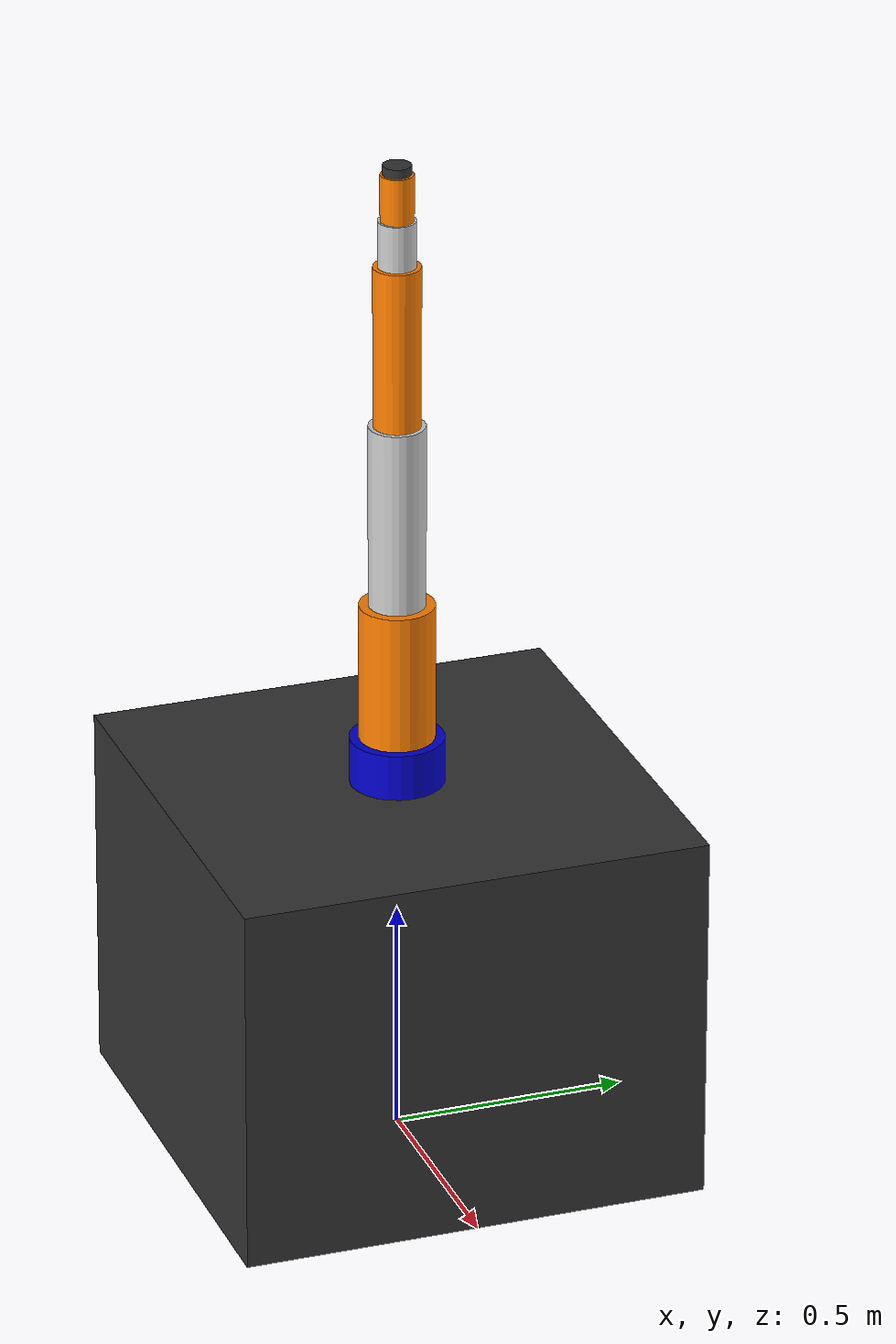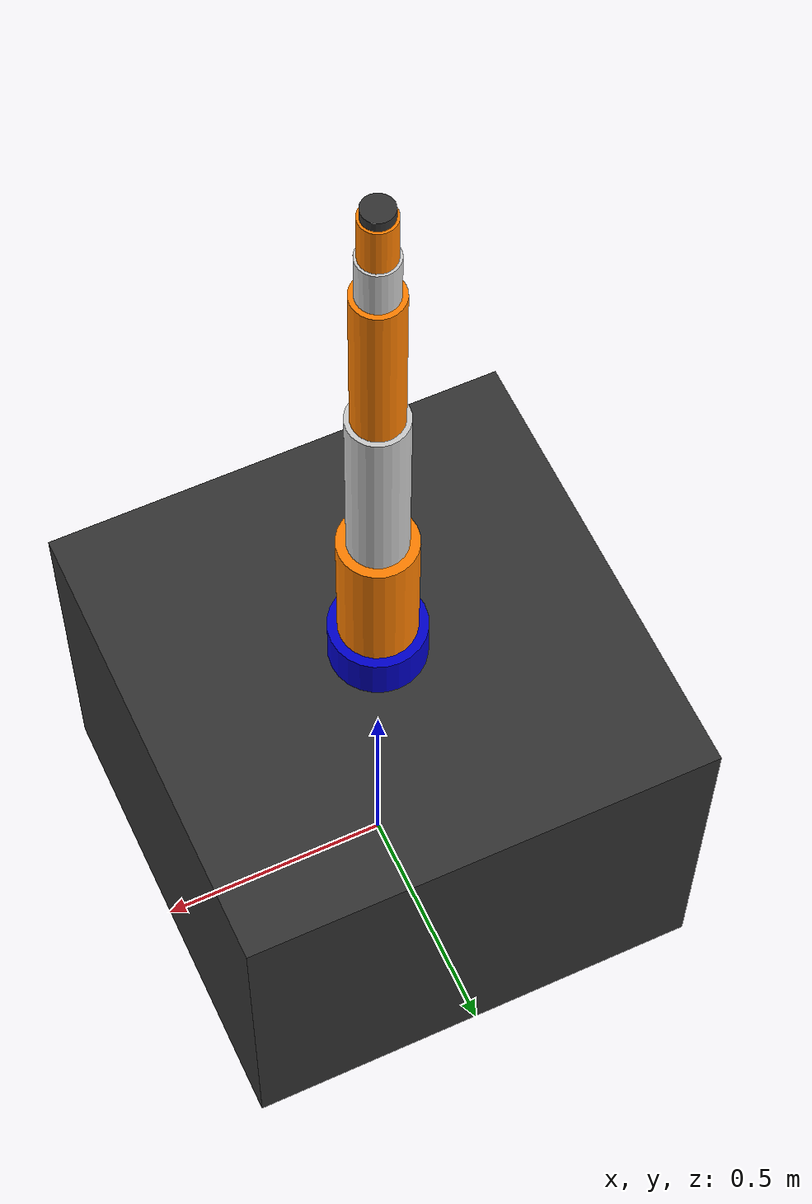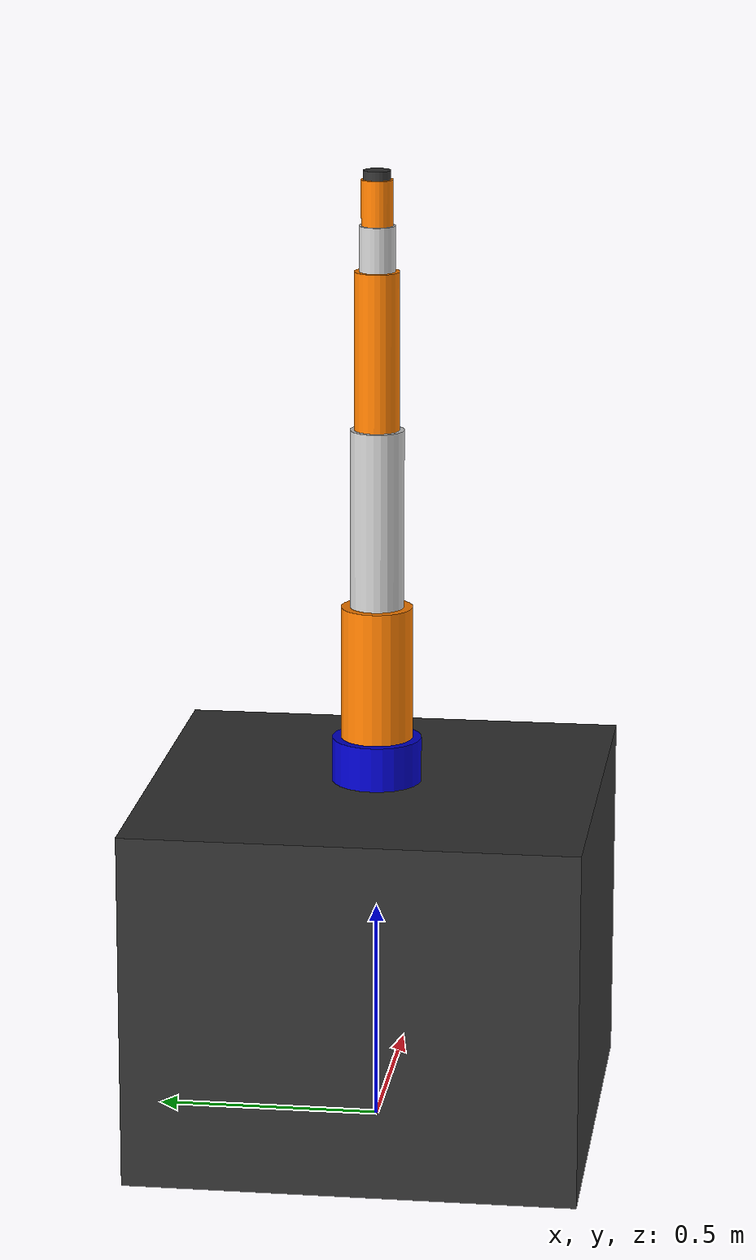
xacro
<?xml version="1.0"?>
<robot xmlns:xacro="http://www.ros.org/wiki/xacro" name="quartermaster">
    <xacro:arg name="initial_positions_file" default="initial_positions.yaml" />

    <!-- Import quartermaster urdf file -->
    <xacro:include filename="$(find quartermaster_description)/urdf/quartermaster.urdf.xacro" />

    <!-- Import control_xacro -->
    <xacro:include filename="quartermaster.ros2_control.xacro" />

    <xacro:quartermaster_ros2_control name="FakeSystem" initial_positions_file="$(arg initial_positions_file)"/>

</robot>

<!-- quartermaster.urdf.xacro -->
<robot name="quartermaster"
    xmlns:xacro="http://ros.org/wiki/xacro">
    <xacro:property name="pi" value="3.14159"/>

    <link name="world"/>

    <joint name="world_to_table_joint" type="fixed">
        <parent link="world"/>
        <child link="table_link"/>
        <origin xyz="0 0 0" rpy="0 0 0"/>
    </joint>

    <link name="table_link">
        <visual>
            <origin xyz="0 0 0.4" rpy="0 0 0"/>
            <geometry>
                <box size="1.0 1.0 0.8"/>
            </geometry>
            <material name="dark_grey">
                <color rgba="0.2 0.2 0.2 1.0"/>
            </material>
        </visual>
        <collision>
            <origin xyz="0 0 0.4" rpy="0 0 0"/>
            <geometry>
                <box size="1.0 1.0 0.8"/>
            </geometry>
        </collision>
        <inertial>
            <origin xyz="0 0 0.4" rpy="0 0 0"/>
            <mass value="50.0"/>
            <inertia ixx="7.33" ixy="0.0" ixz="0.0" iyy="7.33" iyz="0.0" izz="8.33"/>
        </inertial>
    </link>

    <joint name="table_to_base_joint" type="fixed">
        <parent link="table_link"/>
        <child link="base_link"/>
        <origin xyz="0 0 0.8" rpy="0 0 0"/>
    </joint>

    <link name="base_link">
        <visual>
            <origin xyz="0 0 0.05" rpy="0 0 0"/>
            <geometry>
                <cylinder radius="0.1" length="0.1"/>
            </geometry>
            <material name="blue">
                <color rgba="0.0 0.0 0.8 1.0"/>
            </material>
        </visual>
        <collision>
            <origin xyz="0 0 0.05" rpy="0 0 0"/>
            <geometry>
                <cylinder radius="0.1" length="0.1"/>
            </geometry>
        </collision>
        <inertial>
            <origin xyz="0 0 0.05" rpy="0 0 0"/>
            <mass value="5.0"/>
            <inertia ixx="0.0167" ixy="0.0" ixz="0.0" iyy="0.0167" iyz="0.0" izz="0.025"/>
        </inertial>
    </link>

    <joint name="joint_1" type="revolute">
        <parent link="base_link"/>
        <child link="link_1"/>
        <origin xyz="0 0 0.1" rpy="0 0 0"/>
        <axis xyz="0 0 1"/>
        <limit lower="-3.14159" upper="3.14159" effort="100.0" velocity="2.0"/>
        <dynamics damping="0.1" friction="0.1"/>
    </joint>

    <link name="link_1">
        <visual>
            <origin xyz="0 0 0.15" rpy="0 0 0"/>
            <geometry>
                <cylinder radius="0.08" length="0.3"/>
            </geometry>
            <material name="orange">
                <color rgba="1.0 0.5 0.0 1.0"/>
            </material>
        </visual>
        <collision>
            <origin xyz="0 0 0.15" rpy="0 0 0"/>
            <geometry>
                <cylinder radius="0.08" length="0.3"/>
            </geometry>
        </collision>
        <inertial>
            <origin xyz="0 0 0.15" rpy="0 0 0"/>
            <mass value="3.5"/>
            <inertia ixx="0.028" ixy="0.0" ixz="0.0" iyy="0.028" iyz="0.0" izz="0.011"/>
        </inertial>
    </link>

    <joint name="joint_2" type="revolute">
        <parent link="link_1"/>
        <child link="link_2"/>
        <origin xyz="0 0 0.3" rpy="0 0 0"/>
        <axis xyz="0 1 0"/>
        <limit lower="-1.5708" upper="1.5708" effort="150.0" velocity="1.5"/>
        <dynamics damping="0.2" friction="0.2"/>
    </joint>

    <link name="link_2">
        <visual>
            <origin xyz="0 0 0.2" rpy="0 0 0"/>
            <geometry>
                <cylinder radius="0.06" length="0.4"/>
            </geometry>
            <material name="silver">
                <color rgba="0.8 0.8 0.8 1.0"/>
            </material>
        </visual>
        <collision>
            <origin xyz="0 0 0.2" rpy="0 0 0"/>
            <geometry>
                <cylinder radius="0.06" length="0.4"/>
            </geometry>
        </collision>
        <inertial>
            <origin xyz="0 0 0.2" rpy="0 0 0"/>
            <mass value="4.0"/>
            <inertia ixx="0.0569" ixy="0.0" ixz="0.0" iyy="0.0569" iyz="0.0" izz="0.0072"/>
        </inertial>
    </link>

    <joint name="joint_3" type="revolute">
        <parent link="link_2"/>
        <child link="link_3"/>
        <origin xyz="0 0 0.4" rpy="0 0 0"/>
        <axis xyz="0 1 0"/>
        <limit lower="-2.0" upper="2.0" effort="100.0" velocity="2.0"/>
        <dynamics damping="0.1" friction="0.1"/>
    </joint>

    <link name="link_3">
        <visual>
            <origin xyz="0 0 0.175" rpy="0 0 0"/>
            <geometry>
                <cylinder radius="0.05" length="0.35"/>
            </geometry>
            <material name="orange"/>
        </visual>
        <collision>
            <origin xyz="0 0 0.175" rpy="0 0 0"/>
            <geometry>
                <cylinder radius="0.05" length="0.35"/>
            </geometry>
        </collision>
        <inertial>
            <origin xyz="0 0 0.175" rpy="0 0 0"/>
            <mass value="2.5"/>
            <inertia ixx="0.027" ixy="0.0" ixz="0.0" iyy="0.027" iyz="0.0" izz="0.0031"/>
        </inertial>
    </link>

    <joint name="joint_4" type="revolute">
        <parent link="link_3"/>
        <child link="link_4"/>
        <origin xyz="0 0 0.35" rpy="0 0 0"/>
        <axis xyz="0 0 1"/>
        <limit lower="-3.14159" upper="3.14159" effort="50.0" velocity="2.5"/>
        <dynamics damping="0.1" friction="0.1"/>
    </joint>

    <link name="link_4">
        <visual>
            <origin xyz="0 0 0.05" rpy="0 0 0"/>
            <geometry>
                <cylinder radius="0.04" length="0.1"/>
            </geometry>
            <material name="silver"/>
        </visual>
        <collision>
            <origin xyz="0 0 0.05" rpy="0 0 0"/>
            <geometry>
                <cylinder radius="0.04" length="0.1"/>
            </geometry>
        </collision>
        <inertial>
            <origin xyz="0 0 0.05" rpy="0 0 0"/>
            <mass value="1.2"/>
            <inertia ixx="0.002" ixy="0.0" ixz="0.0" iyy="0.002" iyz="0.0" izz="0.001"/>
        </inertial>
    </link>

    <joint name="joint_5" type="revolute">
        <parent link="link_4"/>
        <child link="link_5"/>
        <origin xyz="0 0 0.1" rpy="0 0 0"/>
        <axis xyz="0 1 0"/>
        <limit lower="-1.754" upper="1.754" effort="40.0" velocity="3.0"/>
        <dynamics damping="0.1" friction="0.1"/>
    </joint>

    <link name="link_5">
        <visual>
            <origin xyz="0 0 0.05" rpy="0 0 0"/>
            <geometry>
                <cylinder radius="0.035" length="0.1"/>
            </geometry>
            <material name="orange"/>
        </visual>
        <collision>
            <origin xyz="0 0 0.05" rpy="0 0 0"/>
            <geometry>
                <cylinder radius="0.035" length="0.1"/>
            </geometry>
        </collision>
        <inertial>
            <origin xyz="0 0 0.05" rpy="0 0 0"/>
            <mass value="1.0"/>
            <inertia ixx="0.0011" ixy="0.0" ixz="0.0" iyy="0.0011" iyz="0.0" izz="0.0006"/>
        </inertial>
    </link>

    <joint name="joint_6" type="revolute">
        <parent link="link_5"/>
        <child link="link_6"/>
        <origin xyz="0 0 0.1" rpy="0 0 0"/>
        <axis xyz="0 0 1"/>
        <limit lower="-3.14159" upper="3.14159" effort="20.0" velocity="3.5"/>
        <dynamics damping="0.05" friction="0.05"/>
    </joint>

    <link name="link_6">
        <visual>
            <origin xyz="0 0 0.01" rpy="0 0 0"/>
            <geometry>
                <cylinder radius="0.03" length="0.02"/>
            </geometry>
            <material name="dark_grey"/>
        </visual>
        <collision>
            <origin xyz="0 0 0.01" rpy="0 0 0"/>
            <geometry>
                <cylinder radius="0.03" length="0.02"/>
            </geometry>
        </collision>
        <inertial>
            <origin xyz="0 0 0.01" rpy="0 0 0"/>
            <mass value="0.3"/>
            <inertia ixx="0.0001" ixy="0.0" ixz="0.0" iyy="0.0001" iyz="0.0" izz="0.0002"/>
        </inertial>
    </link>

    <!--GAZEBO TAGS -->

    <ros2_control name="SortingRobotHardwareInterface" type="system">
        <hardware>
            <plugin>gz_ros2_control/GazeboSimSystem</plugin>
        </hardware>

        <joint name="joint_1">
            <command_interface name="position"/>
            <state_interface name="position">
                <param name="initial_value">0.0</param>
            </state_interface>
            <state_interface name="velocity"/>
        </joint>

        <joint name="joint_2">
            <command_interface name="position"/>
            <state_interface name="position">
                <param name="initial_value">0.0</param>
            </state_interface>
            <state_interface name="velocity"/>
        </joint>

        <joint name="joint_3">
            <command_interface name="position"/>
            <state_interface name="position">
                <param name="initial_value">0.0</param>
            </state_interface>
            <state_interface name="velocity"/>
        </joint>

        <joint name="joint_4">
            <command_interface name="position"/>
            <state_interface name="position">
                <param name="initial_value">0.0</param>
            </state_interface>
            <state_interface name="velocity"/>
        </joint>

        <joint name="joint_5">
            <command_interface name="position"/>
            <state_interface name="position">
                <param name="initial_value">0.0</param>
            </state_interface>
            <state_interface name="velocity"/>
        </joint>

        <joint name="joint_6">
            <command_interface name="position"/>
            <state_interface name="position">
                <param name="initial_value">0.0</param>
            </state_interface>
            <state_interface name="velocity"/>
        </joint>
    </ros2_control>

    <gazebo>
        <plugin filename="libgz_ros2_control-system.so" name="gz_ros2_control::GazeboSimROS2ControlPlugin">
            <parameters>$(find quartermaster_logic)/config/quartermaster_controllers.yaml</parameters>
        </plugin>
    </gazebo>
</robot>
